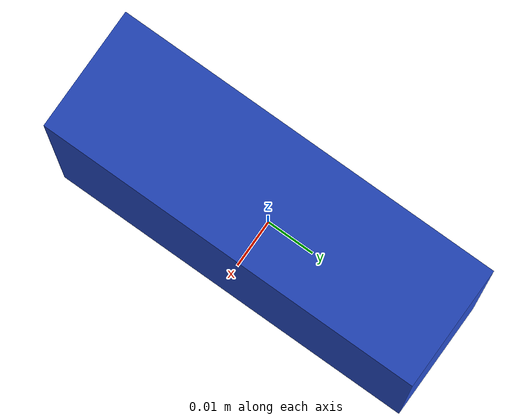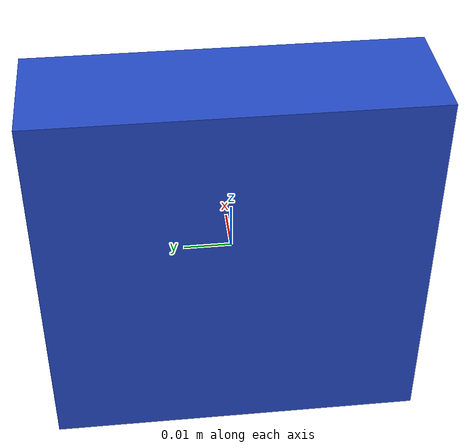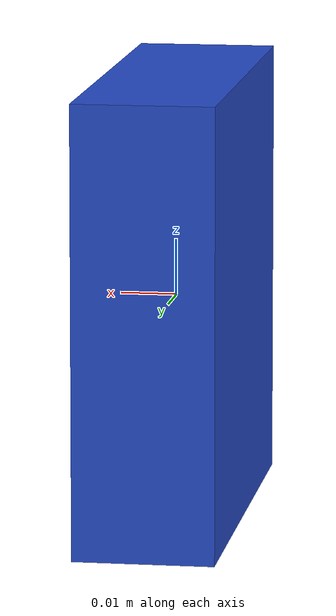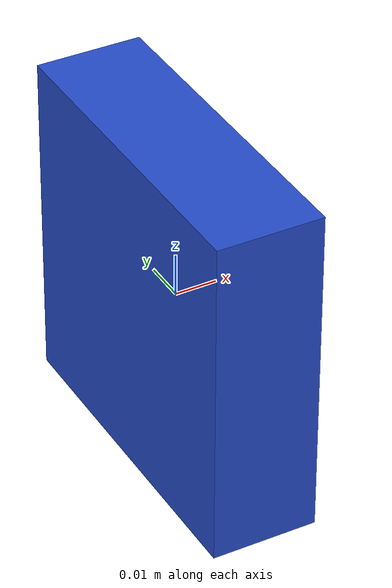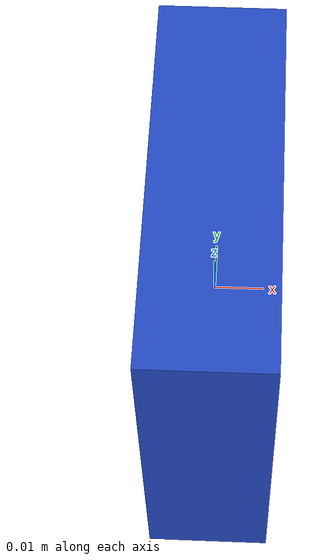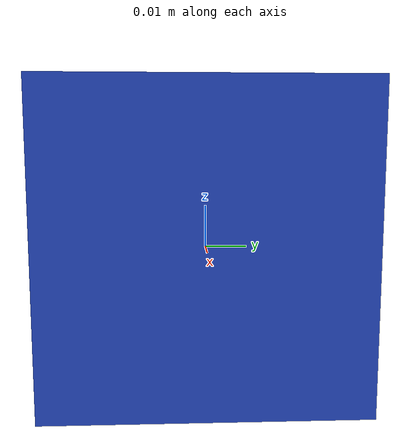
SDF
<!-- ref: https://github.com/zengzhen/zhen_baxter_moveit -->
<?xml version="1.0" ?>
<sdf version="1.4">
<model name="unit_box_0">
  <pose>0 0 0 0 0 0</pose>
  <static>false</static>
  <link name="link">
    <inertial>
      <mass>0.2</mass>
      <inertia> <!-- interias are tricky to compute -->
        <!-- http://answers.gazebosim.org/question/4372/the-inertia-matrix-explained/ -->
        <!-- for a box: ixx = 0.083 * mass * (y*y + z*z) -->
        <!-- for a box: ixy = 0 -->
        <!-- for a box: iyy = 0.083 * mass * (x*x + z*z) -->
        <!-- for a box: ixz = 0 -->
        <!-- for a box: izz = 0.083 * mass * (x*x + y*y) -->
        <!-- for a box: iyz = 0 -->
        <ixx>2.1248e-04</ixx>
        <ixy>0.0</ixy>
        <ixz>0.0</ixz>
        <iyy>1.3149e-04</iyy>
        <iyz>0.0</iyz>
        <izz>1.3149e-04</izz>

      </inertia>
    </inertial>
    <collision name="collision">
      <geometry>
        <box>
          <size>0.025 0.08 0.08</size>
        </box>
      </geometry>
      <surface>
        <contact>
          <ode>
            <soft_cfm>0.2</soft_cfm>
            <soft_erp>0.2</soft_erp>
            <kp>1e5</kp>
            <kd>1.0</kd>
          </ode>
        </contact>

        <friction>
          <ode>
            <mu>1e10</mu>
            <mu2>1e10</mu2>
            <fdir1>0.000000 0.000000 1.000000</fdir1>
          </ode>
        </friction>
        <contact>
          <ode>
            <max_vel>0.1</max_vel>
            <min_depth>0.001</min_depth>
          </ode>
        </contact>
      </surface>
    </collision>
    <visual name="visual">
      <geometry>
        <box>
          <size>0.025 0.08 0.08</size>
        </box>
      </geometry>
      <material>
        <script>
          <uri>file://media/materials/scripts/gazebo.material</uri>
          <name>Gazebo/Blue</name>
        </script>
      </material>
    </visual>
  </link>
</model>
</sdf>
